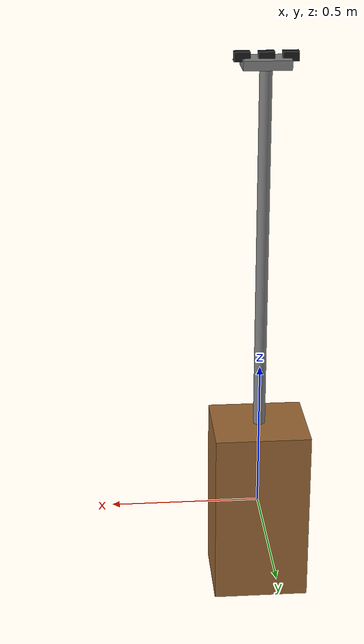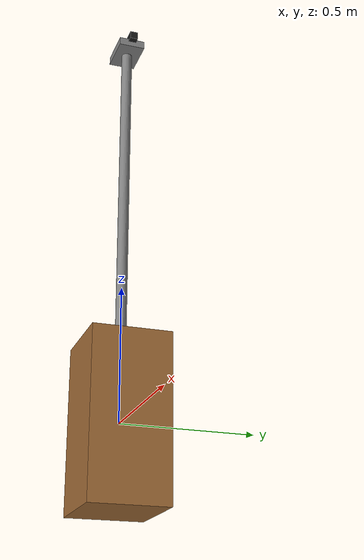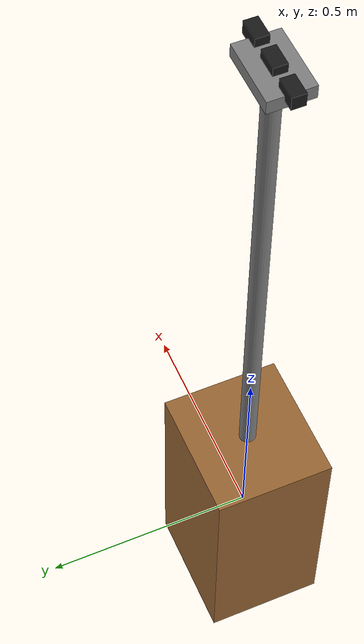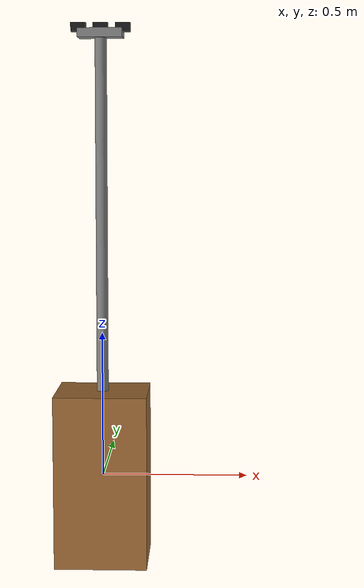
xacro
<?xml version="1.0"?>
<robot xmlns:xacro="http://www.ros.org/wiki/xacro" name="indoor_mapping_robot">

  <!-- Base chassis dimensions -->
  <xacro:property name="base_width" value="0.28575"/>      <!-- 50cm wide -->
  <xacro:property name="base_length" value="0.3175   "/>     <!-- 40cm long -->
  <xacro:property name="base_height" value="0.5969  "/>     <!-- 30cm high -->
  <xacro:property name="base_mass" value="9.0"/>       <!-- ~15kg total -->

  <!-- Wheel specifications (VERIFIED: POLOLU 144x29mm) -->
  <xacro:property name="wheel_radius" value="0.072"/>   <!-- 72mm radius -->
  <xacro:property name="wheel_width" value="0.029"/>    <!-- 29mm wide -->
  <xacro:property name="wheel_mass" value="0.5"/>       <!-- ~500g per wheel -->

  <!-- Wheelbase (VERIFIED from motor tests: 1.5 feet = 0.4572m) -->
  <xacro:property name="wheelbase" value="0.2413"/>
  <xacro:property name="wheel_offset_z" value="-0.05"/> <!-- Wheels below base -->

  <!-- Camera pole (4 feet tall) -->
  <xacro:property name="pole_height" value="1.219"/>    <!-- 4 feet = 1.219m -->
  <xacro:property name="pole_radius" value="0.02"/>     <!-- 2cm radius -->

  <!-- Sensor mounting positions (VERIFIED) -->
  <xacro:property name="lidar_x_offset" value="0.11"/>  <!-- 9cm forward -->
  <xacro:property name="lidar_y_offset" value="0.0"/>   <!-- Centered -->
  <xacro:property name="lidar_z_offset" value="0.0"/>  <!-- 15cm up -->

  <!-- IMU mounting position (near Raspberry Pi) -->
  <xacro:property name="imu_x_offset" value="0.0"/>     <!-- Robot center -->
  <xacro:property name="imu_y_offset" value="-0.10"/>   <!-- 10cm right of center (near Pi) -->
  <xacro:property name="imu_z_offset" value="0.05"/>    <!-- 5cm above base -->

  <!-- =====================================================
       VISUAL MATERIALS
       ===================================================== -->

  <material name="wood_brown">
    <color rgba="0.6 0.4 0.2 1.0"/>
  </material>

  <material name="metal_gray">
    <color rgba="0.5 0.5 0.5 1.0"/>
  </material>

  <material name="black_rubber">
    <color rgba="0.1 0.1 0.1 1.0"/>
  </material>

  <material name="blue_electronics">
    <color rgba="0.0 0.2 0.8 1.0"/>
  </material>

  <material name="red_lidar">
    <color rgba="1.0 0.0 0.0 1.0"/>
  </material>

  <material name="green_imu">
    <color rgba="0.0 0.8 0.2 1.0"/>
  </material>

  <!-- =====================================================
       BASE LINK (Robot Main Body)
       ===================================================== -->

  <link name="base_link">
    <visual>
      <geometry>
        <box size="${base_length} ${base_width} ${base_height}"/>
      </geometry>
      <material name="wood_brown"/>
      <origin xyz="0 0 0" rpy="0 0 0"/>
    </visual>
    <collision>
      <geometry>
        <box size="${base_length + 0.02} ${base_width + 0.02} ${base_height}"/>
      </geometry>
      <origin xyz="0 0 0" rpy="0 0 0"/>
    </collision>
    <inertial>
      <mass value="${base_mass}"/>
      <origin xyz="0 0 0" rpy="0 0 0"/>
      <inertia ixx="${base_mass/12 * (base_width*base_width + base_height*base_height)}"
               ixy="0" ixz="0"
               iyy="${base_mass/12 * (base_length*base_length + base_height*base_height)}"
               iyz="0"
               izz="${base_mass/12 * (base_length*base_length + base_width*base_width)}"/>
    </inertial>
  </link>

  <!-- Front Left Wheel (Driven - Motor pins 17,18) -->
  <link name="front_left_wheel">
    <visual>
      <geometry>
        <cylinder radius="${wheel_radius}" length="${wheel_width}"/>
      </geometry>
      <material name="black_rubber"/>
      <origin xyz="0 0 0" rpy="${pi/2} 0 0"/>
    </visual>
    <collision>
      <geometry>
        <cylinder radius="${wheel_radius}" length="${wheel_width}"/>
      </geometry>
      <origin xyz="0 0 0" rpy="${pi/2} 0 0"/>
    </collision>
    <inertial>
      <mass value="${wheel_mass}"/>
      <origin xyz="0 0 0" rpy="0 0 0"/>
      <inertia ixx="${wheel_mass/12 * (3*wheel_radius*wheel_radius + wheel_width*wheel_width)}"
               ixy="0" ixz="0"
               iyy="${wheel_mass/12 * (3*wheel_radius*wheel_radius + wheel_width*wheel_width)}"
               iyz="0"
               izz="${wheel_mass/2 * wheel_radius*wheel_radius}"/>
    </inertial>
  </link>

  <joint name="front_left_wheel_joint" type="continuous">
    <parent link="base_link"/>
    <child link="front_left_wheel"/>
    <origin xyz="${base_length/4} ${wheelbase/2} ${wheel_offset_z}" rpy="0 0 0"/>
    <axis xyz="0 1 0"/>
  </joint>

  <!-- Front Right Wheel (Driven - Motor pins 22,23) -->
  <link name="front_right_wheel">
    <visual>
      <geometry>
        <cylinder radius="${wheel_radius}" length="${wheel_width}"/>
      </geometry>
      <material name="black_rubber"/>
      <origin xyz="0 0 0" rpy="${pi/2} 0 0"/>
    </visual>
    <collision>
      <geometry>
        <cylinder radius="${wheel_radius}" length="${wheel_width}"/>
      </geometry>
      <origin xyz="0 0 0" rpy="${pi/2} 0 0"/>
    </collision>
    <inertial>
      <mass value="${wheel_mass}"/>
      <origin xyz="0 0 0" rpy="0 0 0"/>
      <inertia ixx="${wheel_mass/12 * (3*wheel_radius*wheel_radius + wheel_width*wheel_width)}"
               ixy="0" ixz="0"
               iyy="${wheel_mass/12 * (3*wheel_radius*wheel_radius + wheel_width*wheel_width)}"
               iyz="0"
               izz="${wheel_mass/2 * wheel_radius*wheel_radius}"/>
    </inertial>
  </link>

  <joint name="front_right_wheel_joint" type="continuous">
    <parent link="base_link"/>
    <child link="front_right_wheel"/>
    <origin xyz="${base_length/4} ${-wheelbase/2} ${wheel_offset_z}" rpy="0 0 0"/>
    <axis xyz="0 1 0"/>
  </joint>

  <!-- Rear Left Wheel (Passive Caster) -->
  <link name="rear_left_wheel">
    <visual>
      <geometry>
        <cylinder radius="${wheel_radius}" length="${wheel_width}"/>
      </geometry>
      <material name="black_rubber"/>
      <origin xyz="0 0 0" rpy="${pi/2} 0 0"/>
    </visual>
    <collision>
      <geometry>
        <cylinder radius="${wheel_radius}" length="${wheel_width}"/>
      </geometry>
      <origin xyz="0 0 0" rpy="${pi/2} 0 0"/>
    </collision>
    <inertial>
      <mass value="${wheel_mass}"/>
      <origin xyz="0 0 0" rpy="0 0 0"/>
      <inertia ixx="${wheel_mass/12 * (3*wheel_radius*wheel_radius + wheel_width*wheel_width)}"
               ixy="0" ixz="0"
               iyy="${wheel_mass/12 * (3*wheel_radius*wheel_radius + wheel_width*wheel_width)}"
               iyz="0"
               izz="${wheel_mass/2 * wheel_radius*wheel_radius}"/>
    </inertial>
  </link>

  <joint name="rear_left_wheel_joint" type="continuous">
    <parent link="base_link"/>
    <child link="rear_left_wheel"/>
    <origin xyz="${-base_length/4} ${wheelbase/2} ${wheel_offset_z}" rpy="0 0 0"/>
    <axis xyz="0 1 0"/>
  </joint>

  <!-- Rear Right Wheel (Passive Caster) -->
  <link name="rear_right_wheel">
    <visual>
      <geometry>
        <cylinder radius="${wheel_radius}" length="${wheel_width}"/>
      </geometry>
      <material name="black_rubber"/>
      <origin xyz="0 0 0" rpy="${pi/2} 0 0"/>
    </visual>
    <collision>
      <geometry>
        <cylinder radius="${wheel_radius}" length="${wheel_width}"/>
      </geometry>
      <origin xyz="0 0 0" rpy="${pi/2} 0 0"/>
    </collision>
    <inertial>
      <mass value="${wheel_mass}"/>
      <origin xyz="0 0 0" rpy="0 0 0"/>
      <inertia ixx="${wheel_mass/12 * (3*wheel_radius*wheel_radius + wheel_width*wheel_width)}"
               ixy="0" ixz="0"
               iyy="${wheel_mass/12 * (3*wheel_radius*wheel_radius + wheel_width*wheel_width)}"
               iyz="0"
               izz="${wheel_mass/2 * wheel_radius*wheel_radius}"/>
    </inertial>
  </link>

  <joint name="rear_right_wheel_joint" type="continuous">
    <parent link="base_link"/>
    <child link="rear_right_wheel"/>
    <origin xyz="${-base_length/4} ${-wheelbase/2} ${wheel_offset_z}" rpy="0 0 0"/>
    <axis xyz="0 1 0"/>
  </joint>

  <!-- =====================================================
       CAMERA POLE (4-foot painter's pole)
       ===================================================== -->

  <link name="camera_pole">
    <visual>
      <geometry>
        <cylinder radius="${pole_radius}" length="${pole_height}"/>
      </geometry>
      <material name="metal_gray"/>
      <origin xyz="0 0 ${pole_height/2}" rpy="0 0 0"/>
    </visual>
    <collision>
      <geometry>
        <cylinder radius="${pole_radius}" length="${pole_height}"/>
      </geometry>
      <origin xyz="0 0 ${pole_height/2}" rpy="0 0 0"/>
    </collision>
    <inertial>
      <mass value="2.0"/>
      <origin xyz="0 0 ${pole_height/2}" rpy="0 0 0"/>
      <inertia ixx="${2.0/12 * (3*pole_radius*pole_radius + pole_height*pole_height)}"
               ixy="0" ixz="0"
               iyy="${2.0/12 * (3*pole_radius*pole_radius + pole_height*pole_height)}"
               iyz="0"
               izz="${2.0/2 * pole_radius*pole_radius}"/>
    </inertial>
  </link>

  <joint name="base_to_pole" type="fixed">
    <parent link="base_link"/>
    <child link="camera_pole"/>
    <origin xyz="0 0 ${base_height/2}" rpy="0 0 0"/>
  </joint>

  <!-- =====================================================
       LIDAR SENSOR (RPLidar A1M8) - VERIFIED POSITION
       ===================================================== -->

  <link name="lidar_link">
    <visual>
      <geometry>
        <cylinder radius="0.035" length="0.06"/>
      </geometry>
      <material name="red_lidar"/>
      <origin xyz="0 0 0" rpy="0 0 0"/>
    </visual>
    <collision>
      <geometry>
        <cylinder radius="0.035" length="0.06"/>
      </geometry>
      <origin xyz="0 0 0" rpy="0 0 0"/>
    </collision>
    <inertial>
      <mass value="0.5"/>
      <origin xyz="0 0 0" rpy="0 0 0"/>
      <inertia ixx="0.001" ixy="0" ixz="0" iyy="0.001" iyz="0" izz="0.001"/>
    </inertial>
  </link>

  <joint name="base_to_lidar" type="fixed">
    <parent link="base_link"/>
    <child link="lidar_link"/>
    <origin xyz="${lidar_x_offset} ${lidar_y_offset} ${lidar_z_offset}" rpy="0 0 0"/>
  </joint>

  <!-- Additional laser frame for compatibility -->
  <link name="laser">
    <inertial>
      <mass value="0.001"/>
      <origin xyz="0 0 0" rpy="0 0 0"/>
      <inertia ixx="0.0001" ixy="0" ixz="0" iyy="0.0001" iyz="0" izz="0.0001"/>
    </inertial>
  </link>

  <joint name="lidar_to_laser" type="fixed">
    <parent link="lidar_link"/>
    <child link="laser"/>
    <origin xyz="0 0 0" rpy="0 0 0"/>
  </joint>

  <link name="imu_link">
    <visual>
      <geometry>
        <!-- GY-91 board dimensions: approximately 20x15x3mm -->
        <box size="0.020 0.015 0.003"/>
      </geometry>
      <material name="green_imu"/>
      <origin xyz="0 0 0" rpy="0 0 0"/>
    </visual>
    <collision>
      <geometry>
        <box size="0.020 0.015 0.003"/>
      </geometry>
      <origin xyz="0 0 0" rpy="0 0 0"/>
    </collision>
    <inertial>
      <mass value="0.01"/>  <!-- ~10g for IMU board -->
      <origin xyz="0 0 0" rpy="0 0 0"/>
      <inertia ixx="0.00001" ixy="0" ixz="0" iyy="0.00001" iyz="0" izz="0.00001"/>
    </inertial>
  </link>

  <joint name="base_to_imu" type="fixed">
    <parent link="base_link"/>
    <child link="imu_link"/>
    <origin xyz="${imu_x_offset} ${imu_y_offset} ${imu_z_offset}" rpy="0 0 0"/>
  </joint>

  <!-- Camera mounting platform -->
  <link name="camera_mount">
    <visual>
      <geometry>
        <box size="0.15 0.10 0.03"/>
      </geometry>
      <material name="metal_gray"/>
      <origin xyz="0 0 0" rpy="0 0 0"/>
    </visual>
    <collision>
      <geometry>
        <box size="0.15 0.10 0.03"/>
      </geometry>
      <origin xyz="0 0 0" rpy="0 0 0"/>
    </collision>
    <inertial>
      <mass value="0.5"/>
      <origin xyz="0 0 0" rpy="0 0 0"/>
      <inertia ixx="0.001" ixy="0" ixz="0" iyy="0.001" iyz="0" izz="0.001"/>
    </inertial>
  </link>

  <joint name="pole_to_camera_mount" type="fixed">
    <parent link="camera_pole"/>
    <child link="camera_mount"/>
    <origin xyz="0 0 ${pole_height}" rpy="0 0 0"/>
  </joint>

  <!-- Main Camera Link -->
  <link name="camera_link">
    <visual>
      <geometry>
        <box size="0.05 0.03 0.03"/>
      </geometry>
      <material name="black_rubber"/>
      <origin xyz="0 0 0" rpy="0 0 0"/>
    </visual>
    <collision>
      <geometry>
        <box size="0.05 0.03 0.03"/>
      </geometry>
      <origin xyz="0 0 0" rpy="0 0 0"/>
    </collision>
    <inertial>
      <mass value="0.2"/>
      <origin xyz="0 0 0" rpy="0 0 0"/>
      <inertia ixx="0.0001" ixy="0" ixz="0" iyy="0.0001" iyz="0" izz="0.0001"/>
    </inertial>
  </link>

  <joint name="mount_to_camera_link" type="fixed">
    <parent link="camera_mount"/>
    <child link="camera_link"/>
    <origin xyz="0 0 0.02" rpy="0 0 0"/>
  </joint>

  <!-- Front-facing Camera -->
  <link name="camera_front_link">
    <visual>
      <geometry>
        <box size="0.05 0.03 0.03"/>
      </geometry>
      <material name="black_rubber"/>
      <origin xyz="0 0 0" rpy="0 0 0"/>
    </visual>
    <collision>
      <geometry>
        <box size="0.05 0.03 0.03"/>
      </geometry>
      <origin xyz="0 0 0" rpy="0 0 0"/>
    </collision>
    <inertial>
      <mass value="0.2"/>
      <origin xyz="0 0 0" rpy="0 0 0"/>
      <inertia ixx="0.0001" ixy="0" ixz="0" iyy="0.0001" iyz="0" izz="0.0001"/>
    </inertial>
  </link>

  <joint name="mount_to_camera_front" type="fixed">
    <parent link="camera_mount"/>
    <child link="camera_front_link"/>
    <origin xyz="0.075 0 0.02" rpy="0 0 0"/>
  </joint>

  <!-- Back-facing Camera -->
  <link name="camera_back_link">
    <visual>
      <geometry>
        <box size="0.05 0.03 0.03"/>
      </geometry>
      <material name="black_rubber"/>
      <origin xyz="0 0 0" rpy="0 0 0"/>
    </visual>
    <collision>
      <geometry>
        <box size="0.05 0.03 0.03"/>
      </geometry>
      <origin xyz="0 0 0" rpy="0 0 0"/>
    </collision>
    <inertial>
      <mass value="0.2"/>
      <origin xyz="0 0 0" rpy="0 0 0"/>
      <inertia ixx="0.0001" ixy="0" ixz="0" iyy="0.0001" iyz="0" izz="0.0001"/>
    </inertial>
  </link>

  <joint name="mount_to_camera_back" type="fixed">
    <parent link="camera_mount"/>
    <child link="camera_back_link"/>
    <origin xyz="-0.075 0 0.02" rpy="0 0 ${pi}"/>
  </joint>

</robot>
